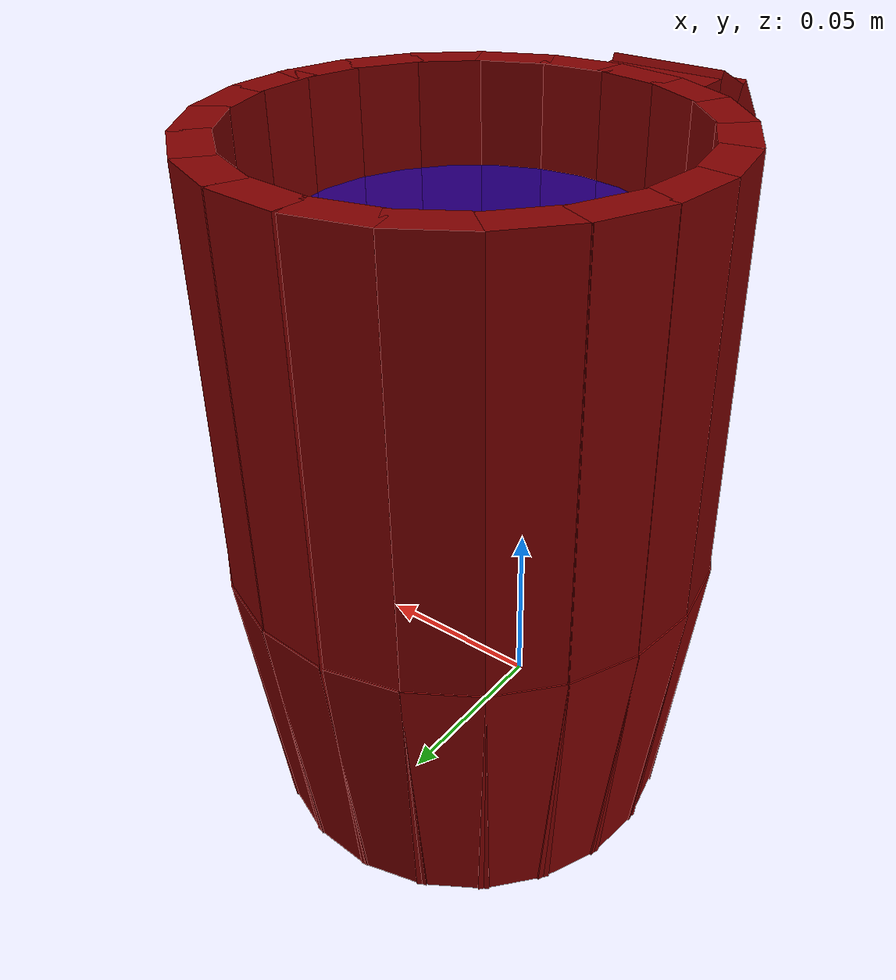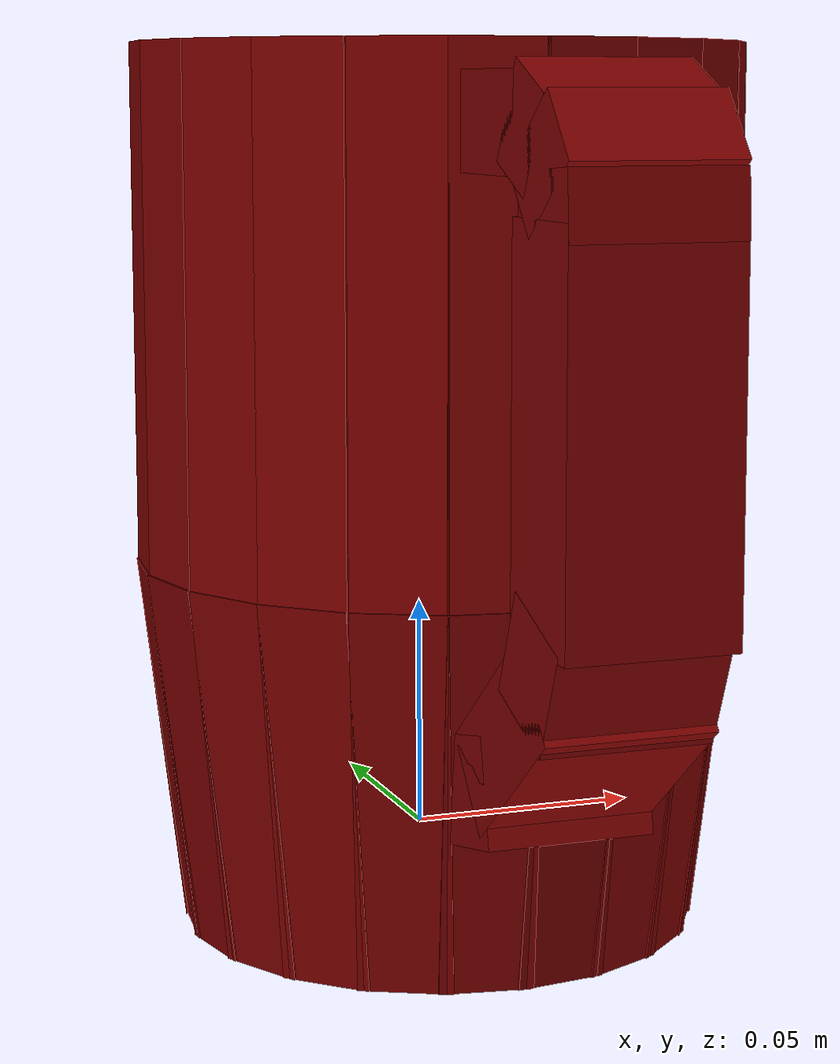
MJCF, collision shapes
<mujoco model="model">
  <option timestep="0.002" gravity="0.0 0.0 -9.81"/>
  <compiler angle="radian"/>
  <asset>
    <mesh file="visuals/blade.obj" name="blade_vis"/>
    <mesh file="visuals/pitcher.obj" name="pitcher_vis"/>
    <mesh file="visuals/pitcher_main.obj" name="pitcher_main_vis"/>
    <texture file="visuals/T_BC001.png" name="pitcher_material" type="2d"/>
    <material name="pitcher_material" rgba="1 1 1 1.0" texture="pitcher_material" shininess="0.5" specular="1"/>
    <texture file="visuals/T_BC001.png" name="blade_material" type="2d"/>
    <material name="blade_material" rgba="1 1 1 1.0" texture="blade_material" shininess="0.5" specular="1"/>
    <material name="pitcher_main_material" rgba="0.20520606637001038 0.20520606637001038 0.20520606637001038 0.699999988079071" shininess="0.5" specular="0.33333333333333337"/>
  </asset>
  <default>
    <default class="visual">
      <geom conaffinity="0" contype="0" group="1" type="mesh"/>
    </default>
    <default class="collision">
      <geom group="0" rgba="0.5 0 0 0.5" density="1.0" solref="0.004 1" solimp="0.998 0.998 0.001"/>
    </default>
    <default class="spawn">
      <geom group="0" rgba="1 1 1 0.5" contype="0" conaffinity="0"/>
      <site group="0" rgba="1 1 1 0.5"/>
    </default>
    <default class="region">
      <geom group="1" conaffinity="0" contype="0" rgba="0 1 0 0" mass="0"/>
    </default>
  </default>
  <worldbody>
    <body>
      <body name="object">
        <body name="pitcher">
          <geom mesh="pitcher_vis" type="mesh" solimp="0.998 0.998 0.001" solref="0.001 1" friction="0.95 0.3 0.1" class="visual" material="pitcher_material"/>
          <geom class="collision" type="box" pos="0.008145440369844437 -0.09233808517456055 0.0985330119729042" size="0.017747683450579643 0.013349523767828941 0.039796262979507446" quat="1.0 0.0 0.0 0.0" name="pitcher_handle_3"/>
          <geom class="collision" type="box" pos="0.008145440369844437 -0.0727827250957489 0.03710109740495682" size="0.017747683450579643 0.011384028941392899 0.02155306562781334" quat="0.9015772342681885 0.432618111371994 9.606053085789741e-17 -1.3425420219842853e-23" name="pitcher_handle_1"/>
          <geom class="collision" type="box" pos="0.008145440369844437 -0.063360795378685 0.15545439720153809" size="0.017747683450579643 0.01566767320036888 0.009914807975292206" quat="1.0 0.0 0.0 0.0" name="pitcher_handle_7"/>
          <geom type="cylinder" pos="0.009167336858808994 0.010747300460934639 -0.01664736121892929" size="0.03830718621611595 0.008834727108478546" quat="1.0 0.0 0.0 0.0" class="collision"/>
          <geom class="collision" type="box" pos="0.008145440369844437 -0.08243346214294434 0.15452764928340912" size="0.017747683450579643 0.010718049481511116 0.00749454740434885" quat="0.8469546437263489 -0.5316651463508606 -1.530577021334394e-16 3.500420233682295e-17" name="pitcher_handle_6"/>
          <geom class="collision" type="box" pos="0.008145440369844437 -0.09135900437831879 0.14814645051956177" size="0.017747683450579643 0.01185432355850935 0.00811900943517685" quat="0.9448847770690918 -0.3274030089378357 -2.090412859910283e-16 -6.73083680402646e-17" name="pitcher_handle_5"/>
          <geom class="collision" type="box" pos="0.008145440369844437 -0.09370072185993195 0.14054805040359497" size="0.017747683450579643 0.01185432355850935 0.006813131272792816" quat="0.9994563460350037 -0.032970741391181946 -2.19597169398389e-16 -2.3994886228211198e-18" name="pitcher_handle_4"/>
          <geom class="collision" type="box" pos="0.008145440369844437 -0.0877424031496048 0.053584858775138855" size="0.017747683450579643 0.011384028941392899 0.01130683347582817" quat="0.981878936290741 0.18950937688350677 9.291213586273277e-17 2.4391799332567724e-17" name="pitcher_handle_2"/>
          <geom class="collision" type="box" pos="0.008145440369844437 -0.05458572134375572 0.02222570776939392" size="0.017747683450579643 0.011384028941392899 0.01130683347582817" quat="0.778609037399292 0.627509355545044 9.35099161303677e-17 -2.1988986891250213e-17" name="pitcher_handle_0"/>
          <body name="blade">
            <geom mesh="blade_vis" type="mesh" solimp="0.998 0.998 0.001" solref="0.001 1" friction="0.95 0.3 0.1" class="visual" material="blade_material"/>
            <geom type="cylinder" pos="0.009167336858808994 0.010747300460934639 0.005740303546190262" size="0.032478395849466324 0.01222135964781046" quat="1.0 0.0 0.0 0.0" class="collision"/>
          </body>
          <body name="pitcher_main">
            <geom class="region" type="cylinder" size="0.04874999821186066 0.06369391083717346" pos="0.008249832317233086 0.011845787987112999 0.08199965953826904" rgba="0 0 1 0.5" name="reg_int"/>
            <geom mesh="pitcher_main_vis" type="mesh" solimp="0.998 0.998 0.001" solref="0.001 1" friction="0.95 0.3 0.1" class="visual" material="pitcher_main_material"/>
            <geom type="box" pos="0.0706438422203064 0.01299198903143406 0.11365347355604172" size="0.00505654513835907 0.010174985975027084 0.058163709938526154" quat="1.0 0.0 0.0 0.0" class="collision"/>
            <geom type="box" pos="0.06611348688602448 0.012991990894079208 0.0168859101831913" size="0.0050565446726977825 0.010174985975027084 0.041744377464056015" quat="0.9982317090034485 -6.2111596180430655e-15 0.05944285914301872 7.986672656556948e-09" class="collision"/>
            <geom type="box" pos="0.06798288226127625 0.030981726944446564 0.11365347355604172" size="0.00505654513835907 0.01017498504370451 0.058163709938526154" quat="0.9890410900115967 0.0 0.0 0.14764051139354706" class="collision"/>
            <geom type="box" pos="0.06365001201629639 0.029658660292625427 0.0168859101831913" size="0.005056544207036495 0.01017498504370451 0.041744377464056015" quat="0.9872921705245972 -0.008776139467954636 0.0587911531329155 0.14737960696220398" class="collision"/>
            <geom type="box" pos="0.060215145349502563 0.04736381396651268 0.11365347355604172" size="0.0050565446726977825 0.01017498504370451 0.058163709938526154" quat="0.9565365314483643 0.0 0.0 0.2916126251220703" class="collision"/>
            <geom type="box" pos="0.05645528435707092 0.044836435467004776 0.01688591204583645" size="0.0050565446726977825 0.010174985975027084 0.041744377464056015" quat="0.954845130443573 -0.017334159463644028 0.05685893073678017 0.29109683632850647" class="collision"/>
            <geom type="box" pos="0.04783382639288902 0.06092069670557976 0.11365347355604172" size="0.00505654513835907 0.010174985975027084 0.058163709938526154" quat="0.9023839831352234 0.0 0.0 0.430932879447937" class="collision"/>
            <geom type="box" pos="0.0449860580265522 0.05739729106426239 0.016885913908481598" size="0.0050565446726977825 0.010174985975027084 0.041744377464056015" quat="0.9007882475852966 -0.025615708902478218 0.05363990366458893 0.4301709830760956" class="collision"/>
            <geom type="box" pos="0.031883951276540756 0.07027436792850494 0.11365347355604172" size="0.0050565446726977825 0.01017498504370451 0.058163709938526154" quat="0.8274691104888916 0.0 0.0 0.561511218547821" class="collision"/>
            <geom type="box" pos="0.030210386961698532 0.06606444716453552 0.016885913908481598" size="0.005056543741375208 0.01017498504370451 0.041744377464056015" quat="0.8260060548782349 -0.03337758034467697 0.04918677359819412 0.5605181455612183" class="collision"/>
            <geom type="box" pos="0.013209659606218338 0.07452081143856049 0.11365347355604172" size="0.00505654513835907 0.010174986906349659 0.058163709938526154" quat="0.7301030158996582 0.0 0.0 0.6833370923995972" class="collision"/>
            <geom type="box" pos="0.012910204008221626 0.07000035047531128 0.016885913908481598" size="0.005056544207036495 0.010174986906349659 0.041744377464056015" quat="0.7288120985031128 -0.04061921685934067 0.043399106711149216 0.6821286678314209" class="collision"/>
            <geom type="box" pos="-0.0062417201697826385 0.07273058593273163 0.11365347355604172" size="0.005056543741375208 0.01017498504370451 0.058163709938526154" quat="0.6124966144561768 0.0 0.0 0.790473222732544" class="collision"/>
            <geom type="box" pos="-0.005110526457428932 0.06834371387958527 0.016885913908481598" size="0.0050565446726977825 0.010174985975027084 0.041744377464056015" quat="0.6114134192466736 -0.04698765277862549 0.036408279091119766 0.7890755534172058" class="collision"/>
            <geom type="box" pos="-0.023400038480758667 0.06541426479816437 0.11365347355604172" size="0.00505654513835907 0.010174985975027084 0.058163709938526154" quat="0.48572608828544617 0.0 0.0 0.8741110563278198" class="collision"/>
            <geom type="box" pos="-0.021007366478443146 0.0615672804415226 0.01688591204583645" size="0.0050565446726977825 0.010174986906349659 0.041744377464056015" quat="0.4848670959472656 -0.051959358155727386 0.02887275256216526 0.8725654482841492" class="collision"/>
            <geom type="box" pos="-0.037419747561216354 0.053482893854379654 0.11365347355604172" size="0.00505654513835907 0.010174985975027084 0.058163709938526154" quat="0.3496263027191162 0.0 0.0 0.9368892312049866" class="collision"/>
            <geom type="box" pos="-0.03399694710969925 0.05051495507359505 0.016885913908481598" size="0.005056544207036495 0.010174985975027084 0.041744377464056015" quat="0.34900808334350586 -0.055690962821245193 0.020782630890607834 0.9352325797080994" class="collision"/>
            <geom type="box" pos="-0.04721221700310707 0.03810887411236763 0.11365347355604172" size="0.00505654513835907 0.010174986906349659 0.058163709938526154" quat="0.20713196694850922 0.0 0.0 0.9783130288124084" class="collision"/>
            <geom type="box" pos="-0.04307058826088905 0.0362728089094162 0.01688591204583645" size="0.0050565446726977825 0.010174986906349659 0.041744377464056015" quat="0.20676571130752563 -0.058153312653303146 0.012312428094446659 0.9765831232070923" class="collision"/>
            <geom type="box" pos="-0.052132368087768555 0.020062051713466644 0.11365347355604172" size="0.00505654513835907 0.010174985975027084 0.058163709938526154" quat="0.05616064369678497 0.0 0.0 0.9984217286109924" class="collision"/>
            <geom type="box" pos="-0.04763057827949524 0.019554000347852707 0.01688591204583645" size="0.0050565446726977825 0.010174985975027084 0.041744377464056015" quat="0.056061338633298874 -0.05934862047433853 0.00333832623437047 0.9966562986373901" class="collision"/>
            <geom type="box" pos="-0.05142613872885704 0.0014652842655777931 0.11365347355604172" size="0.00505654513835907 0.010174985975027084 0.058163709938526154" quat="0.09533408284187317 0.0 0.0 -0.9954453110694885" class="collision"/>
            <geom type="box" pos="-0.046978119760751724 0.002325148321688175 0.01688591204583645" size="0.005056544207036495 0.010174985975027084 0.041744377464056015" quat="0.09516550600528717 0.059171710163354874 0.0056668901816010475 -0.9936851263046265" class="collision"/>
            <geom type="box" pos="-0.045064400881528854 -0.016317259520292282 0.11365347355604172" size="0.00505654513835907 0.010174985975027084 0.058163709938526154" quat="0.2468382567167282 0.0 0.0 -0.9690566658973694" class="collision"/>
            <geom type="box" pos="-0.041086096316576004 -0.014149930328130722 0.01688591204583645" size="0.0050565446726977825 0.010174985975027084 0.041744377464056015" quat="0.24640178680419922 0.05760302394628525 0.014672649092972279 -0.9673431515693665" class="collision"/>
            <geom type="box" pos="-0.033940453082323074 -0.031018968671560287 0.11365347355604172" size="0.00505654513835907 0.010174985975027084 0.058163709938526154" quat="0.38909995555877686 0.0 0.0 -0.9211955666542053" class="collision"/>
            <geom type="box" pos="-0.03078186884522438 -0.027771256864070892 0.01688591204583645" size="0.0050565446726977825 0.010174985975027084 0.041744377464056015" quat="0.38841190934181213 0.05475810542702675 0.023129049688577652 -0.9195666313171387" class="collision"/>
            <geom type="box" pos="-0.01852252334356308 -0.0419926680624485 0.11365347355604172" size="0.00505654513835907 0.010174985975027084 0.058163709938526154" quat="0.5260125398635864 0.0 0.0 -0.8504768013954163" class="collision"/>
            <geom type="box" pos="-0.016499163582921028 -0.03793924301862717 0.01688591204583645" size="0.0050565446726977825 0.010174985975027084 0.041744377464056015" quat="0.5250824093818665 0.05055440962314606 0.03126746788620949 -0.8489729762077332" class="collision"/>
            <geom type="box" pos="-0.0011654067784547806 -0.04765874519944191 0.11365347355604172" size="0.00505654513835907 0.010174985975027084 0.058163709938526154" quat="0.6462706327438354 0.0 0.0 -0.7631083130836487" class="collision"/>
            <geom type="box" pos="-0.00041939783841371536 -0.04319022223353386 0.0168859101831913" size="0.005056544207036495 0.010174985975027084 0.041744377464056015" quat="0.6451278328895569 0.04536105692386627 0.03841593489050865 -0.7617589235305786" class="collision"/>
            <geom type="box" pos="0.016947153955698013 -0.04800551012158394 0.11365347355604172" size="0.005056543741375208 0.010174984112381935 0.058163709938526154" quat="0.751477062702179 0.0 0.0 -0.6597592234611511" class="collision"/>
            <geom type="box" pos="0.01636076159775257 -0.04351324960589409 0.01688591204583645" size="0.0050565446726977825 0.010174984112381935 0.041744377464056015" quat="0.7501482367515564 0.0392177514731884 0.04466966167092323 -0.6585925817489624" class="collision"/>
            <geom type="box" pos="0.03481881693005562 -0.042866017669439316 0.11365347355604172" size="0.00505654513835907 0.010174985975027084 0.058163709938526154" quat="0.8424695730209351 0.0 0.0 -0.5387439131736755" class="collision"/>
            <geom type="box" pos="0.0329182930290699 -0.03875356912612915 0.01688591204583645" size="0.0050565446726977825 0.010174987837672234 0.041744377464056015" quat="0.8409799337387085 0.03202425315976143 0.050078462809324265 -0.5377911925315857" class="collision"/>
            <geom type="box" pos="0.05017935112118721 -0.03277253732085228 0.11365347355604172" size="0.00505654513835907 0.010174985975027084 0.058163709938526154" quat="0.9134286046028137 0.0 0.0 -0.40699896216392517" class="collision"/>
            <geom type="box" pos="0.04714988172054291 -0.02940407767891884 0.0168859101831913" size="0.0050565446726977825 0.010174985975027084 0.041744377464056015" quat="0.9118134379386902 0.024193018674850464 0.05429643392562866 -0.4062793254852295" class="collision"/>
            <geom type="box" pos="0.061763882637023926 -0.018784044310450554 0.11365347355604172" size="0.00505654513835907 0.010174985975027084 0.058163709938526154" quat="0.9634576439857483 0.0 0.0 -0.2678607404232025" class="collision"/>
            <geom type="box" pos="0.0578836090862751 -0.01644572988152504 0.016885904595255852" size="0.005056545604020357 0.010174985975027084 0.041744377464056015" quat="0.9617539644241333 0.015922321006655693 0.057270318269729614 -0.2673872411251068" class="collision"/>
            <geom type="box" pos="0.0687098354101181 -0.0022389525547623634 0.11365347355604172" size="0.00505654513835907 0.010174985975027084 0.058163709938526154" quat="0.9922011494636536 0.0 0.0 -0.12464700639247894" class="collision"/>
            <geom type="box" pos="0.06432025134563446 -0.0011183731257915497 0.016885904595255852" size="0.0050565446726977825 0.010174985975027084 0.041744377464056015" quat="0.9904466867446899 0.007409313693642616 0.05897891893982887 -0.12442638725042343" class="collision"/>
          </body>
        </body>
        <geom class="region" name="reg_bbox" density="0" type="box" pos="0.008639499999999998 -0.009820000000000002 0.05048" size="0.0687715 0.09565499999999999 0.123526"/>
      </body>
      <site rgba="0 1 0 0" size="0.005" pos="0.00121278 0.01248687 0.17890782" name="anchor_site"/>
    </body>
  </worldbody>
</mujoco>
